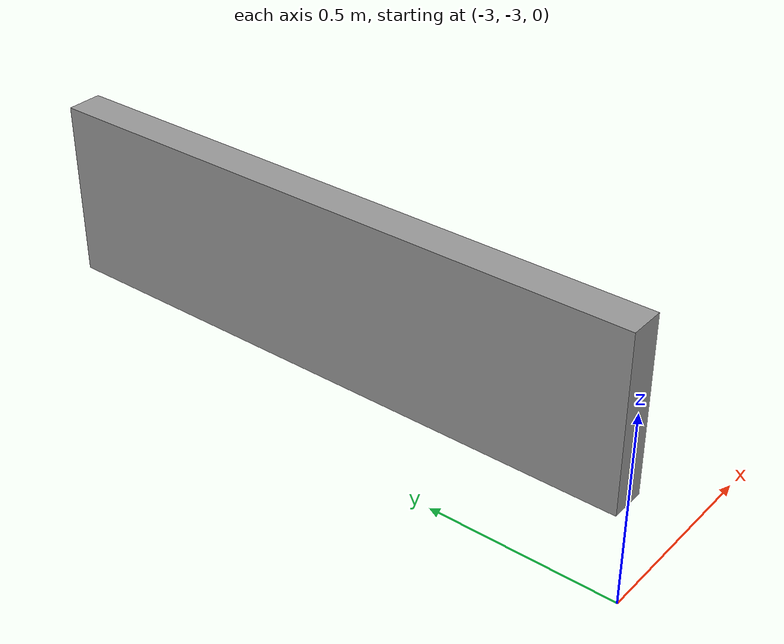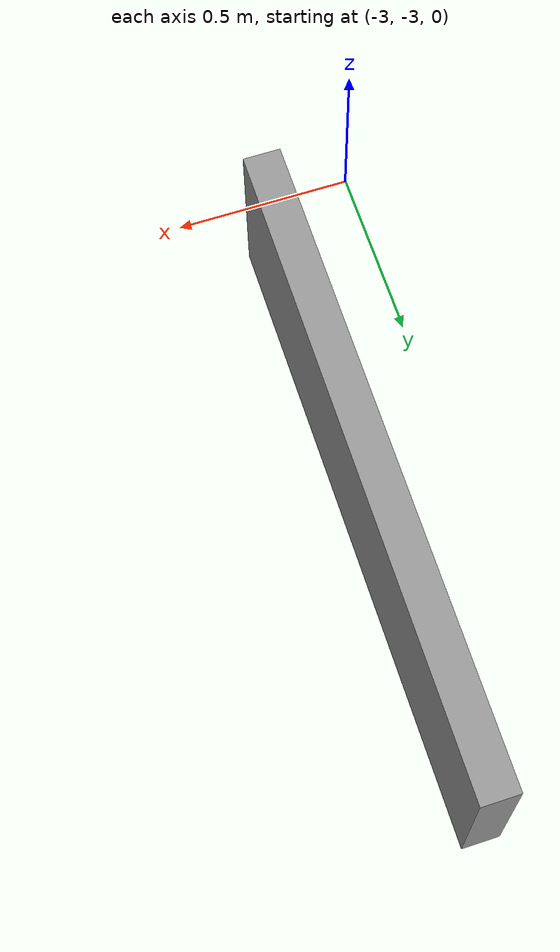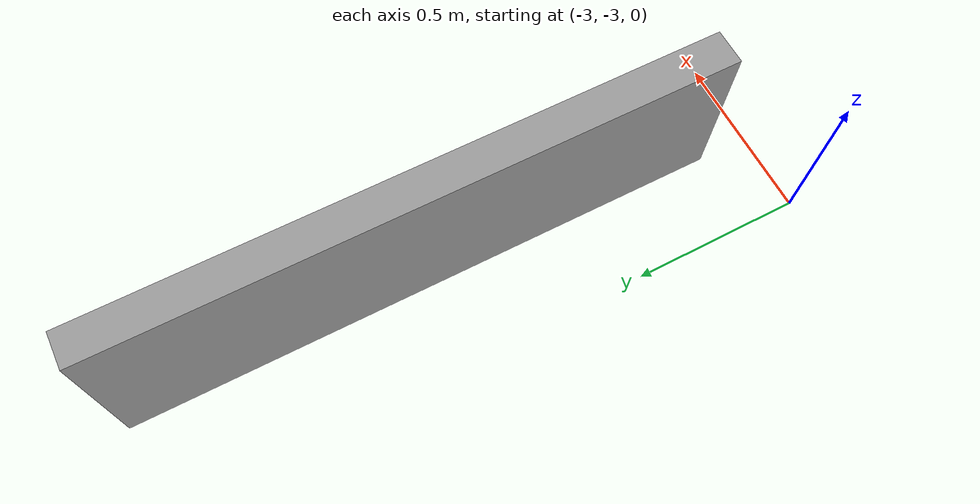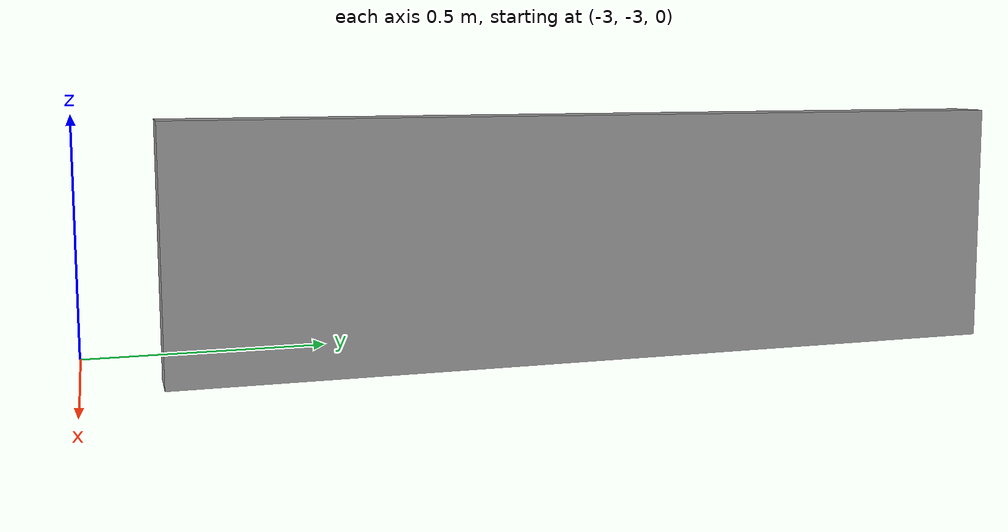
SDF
<?xml version='1.0'?>
<sdf version='1.7'>
  <model name='first_test'>
    <pose>-1.38 -1.425 0 0 -0 0</pose>
    <link name='Wall_0'>
      <collision name='Wall_0_Collision'>
        <geometry>
          <box>
            <size>1.75 0.1 0.5</size>
          </box>
        </geometry>
        <pose>0 0 0.25 0 -0 0</pose>
      </collision>
      <visual name='Wall_0_Visual'>
        <pose>0 0 0.25 0 -0 0</pose>
        <geometry>
          <box>
            <size>1.75 0.1 0.5</size>
          </box>
        </geometry>
        <material>
          <script>
            <uri>file://media/materials/scripts/gazebo.material</uri>
            <name>Gazebo/Grey</name>
          </script>
          <ambient>1 1 1 1</ambient>
        </material>
        <meta>
          <layer>0</layer>
        </meta>
      </visual>
      <pose>-1.33 -0.55 0 0 -0 -1.5708</pose>
    </link>
    <static>1</static>
  </model>
</sdf>
